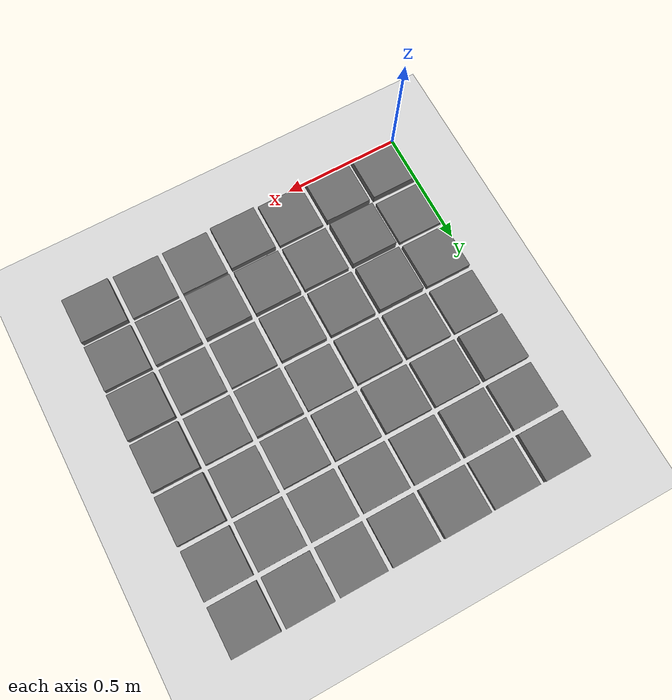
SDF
<sdf version="1.7">
 <world name="default">
  <model name="ground_plane">
   <static>1</static>
   <link name="link">
    <collision name="collision">
     <geometry><plane><normal>0 0 1</normal><size>100 100</size></plane></geometry>
     <surface>
      <contact><collide_bitmask>65535</collide_bitmask></contact>
      <friction><ode><mu>100</mu><mu2>50</mu2></ode></friction>
     </surface>
    </collision>
    <visual name="visual">
     <cast_shadows>0</cast_shadows>
     <geometry><plane><normal>0 0 1</normal><size>100 100</size></plane></geometry>
     <material>
      <script><uri>file://media/materials/scripts/gazebo.material</uri><name>Gazebo/Grey</name></script>
     </material>
    </visual>
   </link>
  </model>
  <model name="terrain_8_8">
   <static>1</static>
   <link name="link">
    <collision name="collision">
     <geometry><box><size>0.2 0.2 0.043654</size></box></geometry>
     <surface><friction><ode><mu>100</mu><mu2>100</mu2></ode></friction></surface>
    </collision>
    <visual name="visual">
     <geometry><box><size>0.2 0.2 0.043654</size></box></geometry>
     <material><ambient>0.4 0.4 0.4 1</ambient></material>
    </visual>
   </link>
   <pose>0.11 0.11 0.021827 0 -0 0</pose>
  </model>
  <model name="terrain_8_9">
   <static>1</static>
   <link name="link">
    <collision name="collision">
     <geometry><box><size>0.2 0.2 0.020469</size></box></geometry>
     <surface><friction><ode><mu>100</mu><mu2>100</mu2></ode></friction></surface>
    </collision>
    <visual name="visual">
     <geometry><box><size>0.2 0.2 0.020469</size></box></geometry>
     <material><ambient>0.4 0.4 0.4 1</ambient></material>
    </visual>
   </link>
   <pose>0.11 0.33 0.010234 0 -0 0</pose>
  </model>
  <model name="terrain_8_10">
   <static>1</static>
   <link name="link">
    <collision name="collision">
     <geometry><box><size>0.2 0.2 0.02935</size></box></geometry>
     <surface><friction><ode><mu>100</mu><mu2>100</mu2></ode></friction></surface>
    </collision>
    <visual name="visual">
     <geometry><box><size>0.2 0.2 0.02935</size></box></geometry>
     <material><ambient>0.4 0.4 0.4 1</ambient></material>
    </visual>
   </link>
   <pose>0.11 0.55 0.014675 0 -0 0</pose>
  </model>
  <model name="terrain_8_11">
   <static>1</static>
   <link name="link">
    <collision name="collision">
     <geometry><box><size>0.2 0.2 0.020907</size></box></geometry>
     <surface><friction><ode><mu>100</mu><mu2>100</mu2></ode></friction></surface>
    </collision>
    <visual name="visual">
     <geometry><box><size>0.2 0.2 0.020907</size></box></geometry>
     <material><ambient>0.4 0.4 0.4 1</ambient></material>
    </visual>
   </link>
   <pose>0.11 0.77 0.010453 0 -0 0</pose>
  </model>
  <model name="terrain_8_12">
   <static>1</static>
   <link name="link">
    <collision name="collision">
     <geometry><box><size>0.2 0.2 0.041535</size></box></geometry>
     <surface><friction><ode><mu>100</mu><mu2>100</mu2></ode></friction></surface>
    </collision>
    <visual name="visual">
     <geometry><box><size>0.2 0.2 0.041535</size></box></geometry>
     <material><ambient>0.4 0.4 0.4 1</ambient></material>
    </visual>
   </link>
   <pose>0.11 0.99 0.020767 0 -0 0</pose>
  </model>
  <model name="terrain_8_13">
   <static>1</static>
   <link name="link">
    <collision name="collision">
     <geometry><box><size>0.2 0.2 0.025391</size></box></geometry>
     <surface><friction><ode><mu>100</mu><mu2>100</mu2></ode></friction></surface>
    </collision>
    <visual name="visual">
     <geometry><box><size>0.2 0.2 0.025391</size></box></geometry>
     <material><ambient>0.4 0.4 0.4 1</ambient></material>
    </visual>
   </link>
   <pose>0.11 1.21 0.012695 0 -0 0</pose>
  </model>
  <model name="terrain_8_14">
   <static>1</static>
   <link name="link">
    <collision name="collision">
     <geometry><box><size>0.2 0.2 0.035851</size></box></geometry>
     <surface><friction><ode><mu>100</mu><mu2>100</mu2></ode></friction></surface>
    </collision>
    <visual name="visual">
     <geometry><box><size>0.2 0.2 0.035851</size></box></geometry>
     <material><ambient>0.4 0.4 0.4 1</ambient></material>
    </visual>
   </link>
   <pose>0.11 1.43 0.017925 0 -0 0</pose>
  </model>
  <model name="terrain_9_8">
   <static>1</static>
   <link name="link">
    <collision name="collision">
     <geometry><box><size>0.2 0.2 0.039149</size></box></geometry>
     <surface><friction><ode><mu>100</mu><mu2>100</mu2></ode></friction></surface>
    </collision>
    <visual name="visual">
     <geometry><box><size>0.2 0.2 0.039149</size></box></geometry>
     <material><ambient>0.4 0.4 0.4 1</ambient></material>
    </visual>
   </link>
   <pose>0.33 0.11 0.019575 0 -0 0</pose>
  </model>
  <model name="terrain_9_9">
   <static>1</static>
   <link name="link">
    <collision name="collision">
     <geometry><box><size>0.2 0.2 0.048768</size></box></geometry>
     <surface><friction><ode><mu>100</mu><mu2>100</mu2></ode></friction></surface>
    </collision>
    <visual name="visual">
     <geometry><box><size>0.2 0.2 0.048768</size></box></geometry>
     <material><ambient>0.4 0.4 0.4 1</ambient></material>
    </visual>
   </link>
   <pose>0.33 0.33 0.024384 0 -0 0</pose>
  </model>
  <model name="terrain_9_10">
   <static>1</static>
   <link name="link">
    <collision name="collision">
     <geometry><box><size>0.2 0.2 0.046906</size></box></geometry>
     <surface><friction><ode><mu>100</mu><mu2>100</mu2></ode></friction></surface>
    </collision>
    <visual name="visual">
     <geometry><box><size>0.2 0.2 0.046906</size></box></geometry>
     <material><ambient>0.4 0.4 0.4 1</ambient></material>
    </visual>
   </link>
   <pose>0.33 0.55 0.023453 0 -0 0</pose>
  </model>
  <model name="terrain_9_11">
   <static>1</static>
   <link name="link">
    <collision name="collision">
     <geometry><box><size>0.2 0.2 0.030399</size></box></geometry>
     <surface><friction><ode><mu>100</mu><mu2>100</mu2></ode></friction></surface>
    </collision>
    <visual name="visual">
     <geometry><box><size>0.2 0.2 0.030399</size></box></geometry>
     <material><ambient>0.4 0.4 0.4 1</ambient></material>
    </visual>
   </link>
   <pose>0.33 0.77 0.0152 0 -0 0</pose>
  </model>
  <model name="terrain_9_12">
   <static>1</static>
   <link name="link">
    <collision name="collision">
     <geometry><box><size>0.2 0.2 0.033689</size></box></geometry>
     <surface><friction><ode><mu>100</mu><mu2>100</mu2></ode></friction></surface>
    </collision>
    <visual name="visual">
     <geometry><box><size>0.2 0.2 0.033689</size></box></geometry>
     <material><ambient>0.4 0.4 0.4 1</ambient></material>
    </visual>
   </link>
   <pose>0.33 0.99 0.016845 0 -0 0</pose>
  </model>
  <model name="terrain_9_13">
   <static>1</static>
   <link name="link">
    <collision name="collision">
     <geometry><box><size>0.2 0.2 0.034276</size></box></geometry>
     <surface><friction><ode><mu>100</mu><mu2>100</mu2></ode></friction></surface>
    </collision>
    <visual name="visual">
     <geometry><box><size>0.2 0.2 0.034276</size></box></geometry>
     <material><ambient>0.4 0.4 0.4 1</ambient></material>
    </visual>
   </link>
   <pose>0.33 1.21 0.017138 0 -0 0</pose>
  </model>
  <model name="terrain_9_14">
   <static>1</static>
   <link name="link">
    <collision name="collision">
     <geometry><box><size>0.2 0.2 0.021602</size></box></geometry>
     <surface><friction><ode><mu>100</mu><mu2>100</mu2></ode></friction></surface>
    </collision>
    <visual name="visual">
     <geometry><box><size>0.2 0.2 0.021602</size></box></geometry>
     <material><ambient>0.4 0.4 0.4 1</ambient></material>
    </visual>
   </link>
   <pose>0.33 1.43 0.010801 0 -0 0</pose>
  </model>
  <model name="terrain_10_8">
   <static>1</static>
   <link name="link">
    <collision name="collision">
     <geometry><box><size>0.2 0.2 0.021784</size></box></geometry>
     <surface><friction><ode><mu>100</mu><mu2>100</mu2></ode></friction></surface>
    </collision>
    <visual name="visual">
     <geometry><box><size>0.2 0.2 0.021784</size></box></geometry>
     <material><ambient>0.4 0.4 0.4 1</ambient></material>
    </visual>
   </link>
   <pose>0.55 0.11 0.010892 0 -0 0</pose>
  </model>
  <model name="terrain_10_9">
   <static>1</static>
   <link name="link">
    <collision name="collision">
     <geometry><box><size>0.2 0.2 0.029784</size></box></geometry>
     <surface><friction><ode><mu>100</mu><mu2>100</mu2></ode></friction></surface>
    </collision>
    <visual name="visual">
     <geometry><box><size>0.2 0.2 0.029784</size></box></geometry>
     <material><ambient>0.4 0.4 0.4 1</ambient></material>
    </visual>
   </link>
   <pose>0.55 0.33 0.014892 0 -0 0</pose>
  </model>
  <model name="terrain_10_10">
   <static>1</static>
   <link name="link">
    <collision name="collision">
     <geometry><box><size>0.2 0.2 0.037088</size></box></geometry>
     <surface><friction><ode><mu>100</mu><mu2>100</mu2></ode></friction></surface>
    </collision>
    <visual name="visual">
     <geometry><box><size>0.2 0.2 0.037088</size></box></geometry>
     <material><ambient>0.4 0.4 0.4 1</ambient></material>
    </visual>
   </link>
   <pose>0.55 0.55 0.018544 0 -0 0</pose>
  </model>
  <model name="terrain_10_11">
   <static>1</static>
   <link name="link">
    <collision name="collision">
     <geometry><box><size>0.2 0.2 0.031507</size></box></geometry>
     <surface><friction><ode><mu>100</mu><mu2>100</mu2></ode></friction></surface>
    </collision>
    <visual name="visual">
     <geometry><box><size>0.2 0.2 0.031507</size></box></geometry>
     <material><ambient>0.4 0.4 0.4 1</ambient></material>
    </visual>
   </link>
   <pose>0.55 0.77 0.015754 0 -0 0</pose>
  </model>
  <model name="terrain_10_12">
   <static>1</static>
   <link name="link">
    <collision name="collision">
     <geometry><box><size>0.2 0.2 0.044557</size></box></geometry>
     <surface><friction><ode><mu>100</mu><mu2>100</mu2></ode></friction></surface>
    </collision>
    <visual name="visual">
     <geometry><box><size>0.2 0.2 0.044557</size></box></geometry>
     <material><ambient>0.4 0.4 0.4 1</ambient></material>
    </visual>
   </link>
   <pose>0.55 0.99 0.022278 0 -0 0</pose>
  </model>
  <model name="terrain_10_13">
   <static>1</static>
   <link name="link">
    <collision name="collision">
     <geometry><box><size>0.2 0.2 0.023219</size></box></geometry>
     <surface><friction><ode><mu>100</mu><mu2>100</mu2></ode></friction></surface>
    </collision>
    <visual name="visual">
     <geometry><box><size>0.2 0.2 0.023219</size></box></geometry>
     <material><ambient>0.4 0.4 0.4 1</ambient></material>
    </visual>
   </link>
   <pose>0.55 1.21 0.01161 0 -0 0</pose>
  </model>
  <model name="terrain_10_14">
   <static>1</static>
   <link name="link">
    <collision name="collision">
     <geometry><box><size>0.2 0.2 0.03986</size></box></geometry>
     <surface><friction><ode><mu>100</mu><mu2>100</mu2></ode></friction></surface>
    </collision>
    <visual name="visual">
     <geometry><box><size>0.2 0.2 0.03986</size></box></geometry>
     <material><ambient>0.4 0.4 0.4 1</ambient></material>
    </visual>
   </link>
   <pose>0.55 1.43 0.01993 0 -0 0</pose>
  </model>
  <model name="terrain_11_8">
   <static>1</static>
   <link name="link">
    <collision name="collision">
     <geometry><box><size>0.2 0.2 0.036158</size></box></geometry>
     <surface><friction><ode><mu>100</mu><mu2>100</mu2></ode></friction></surface>
    </collision>
    <visual name="visual">
     <geometry><box><size>0.2 0.2 0.036158</size></box></geometry>
     <material><ambient>0.4 0.4 0.4 1</ambient></material>
    </visual>
   </link>
   <pose>0.77 0.11 0.018079 0 -0 0</pose>
  </model>
  <model name="terrain_11_9">
   <static>1</static>
   <link name="link">
    <collision name="collision">
     <geometry><box><size>0.2 0.2 0.04115</size></box></geometry>
     <surface><friction><ode><mu>100</mu><mu2>100</mu2></ode></friction></surface>
    </collision>
    <visual name="visual">
     <geometry><box><size>0.2 0.2 0.04115</size></box></geometry>
     <material><ambient>0.4 0.4 0.4 1</ambient></material>
    </visual>
   </link>
   <pose>0.77 0.33 0.020575 0 -0 0</pose>
  </model>
  <model name="terrain_11_10">
   <static>1</static>
   <link name="link">
    <collision name="collision">
     <geometry><box><size>0.2 0.2 0.036824</size></box></geometry>
     <surface><friction><ode><mu>100</mu><mu2>100</mu2></ode></friction></surface>
    </collision>
    <visual name="visual">
     <geometry><box><size>0.2 0.2 0.036824</size></box></geometry>
     <material><ambient>0.4 0.4 0.4 1</ambient></material>
    </visual>
   </link>
   <pose>0.77 0.55 0.018412 0 -0 0</pose>
  </model>
  <model name="terrain_11_11">
   <static>1</static>
   <link name="link">
    <collision name="collision">
     <geometry><box><size>0.2 0.2 0.022368</size></box></geometry>
     <surface><friction><ode><mu>100</mu><mu2>100</mu2></ode></friction></surface>
    </collision>
    <visual name="visual">
     <geometry><box><size>0.2 0.2 0.022368</size></box></geometry>
     <material><ambient>0.4 0.4 0.4 1</ambient></material>
    </visual>
   </link>
   <pose>0.77 0.77 0.011184 0 -0 0</pose>
  </model>
  <model name="terrain_11_12">
   <static>1</static>
   <link name="link">
    <collision name="collision">
     <geometry><box><size>0.2 0.2 0.036766</size></box></geometry>
     <surface><friction><ode><mu>100</mu><mu2>100</mu2></ode></friction></surface>
    </collision>
    <visual name="visual">
     <geometry><box><size>0.2 0.2 0.036766</size></box></geometry>
     <material><ambient>0.4 0.4 0.4 1</ambient></material>
    </visual>
   </link>
   <pose>0.77 0.99 0.018383 0 -0 0</pose>
  </model>
  <model name="terrain_11_13">
   <static>1</static>
   <link name="link">
    <collision name="collision">
     <geometry><box><size>0.2 0.2 0.033861</size></box></geometry>
     <surface><friction><ode><mu>100</mu><mu2>100</mu2></ode></friction></surface>
    </collision>
    <visual name="visual">
     <geometry><box><size>0.2 0.2 0.033861</size></box></geometry>
     <material><ambient>0.4 0.4 0.4 1</ambient></material>
    </visual>
   </link>
   <pose>0.77 1.21 0.016931 0 -0 0</pose>
  </model>
  <model name="terrain_11_14">
   <static>1</static>
   <link name="link">
    <collision name="collision">
     <geometry><box><size>0.2 0.2 0.035045</size></box></geometry>
     <surface><friction><ode><mu>100</mu><mu2>100</mu2></ode></friction></surface>
    </collision>
    <visual name="visual">
     <geometry><box><size>0.2 0.2 0.035045</size></box></geometry>
     <material><ambient>0.4 0.4 0.4 1</ambient></material>
    </visual>
   </link>
   <pose>0.77 1.43 0.017523 0 -0 0</pose>
  </model>
  <model name="terrain_12_8">
   <static>1</static>
   <link name="link">
    <collision name="collision">
     <geometry><box><size>0.2 0.2 0.021308</size></box></geometry>
     <surface><friction><ode><mu>100</mu><mu2>100</mu2></ode></friction></surface>
    </collision>
    <visual name="visual">
     <geometry><box><size>0.2 0.2 0.021308</size></box></geometry>
     <material><ambient>0.4 0.4 0.4 1</ambient></material>
    </visual>
   </link>
   <pose>0.99 0.11 0.010654 0 -0 0</pose>
  </model>
  <model name="terrain_12_9">
   <static>1</static>
   <link name="link">
    <collision name="collision">
     <geometry><box><size>0.2 0.2 0.04636</size></box></geometry>
     <surface><friction><ode><mu>100</mu><mu2>100</mu2></ode></friction></surface>
    </collision>
    <visual name="visual">
     <geometry><box><size>0.2 0.2 0.04636</size></box></geometry>
     <material><ambient>0.4 0.4 0.4 1</ambient></material>
    </visual>
   </link>
   <pose>0.99 0.33 0.02318 0 -0 0</pose>
  </model>
  <model name="terrain_12_10">
   <static>1</static>
   <link name="link">
    <collision name="collision">
     <geometry><box><size>0.2 0.2 0.024504</size></box></geometry>
     <surface><friction><ode><mu>100</mu><mu2>100</mu2></ode></friction></surface>
    </collision>
    <visual name="visual">
     <geometry><box><size>0.2 0.2 0.024504</size></box></geometry>
     <material><ambient>0.4 0.4 0.4 1</ambient></material>
    </visual>
   </link>
   <pose>0.99 0.55 0.012252 0 -0 0</pose>
  </model>
  <model name="terrain_12_11">
   <static>1</static>
   <link name="link">
    <collision name="collision">
     <geometry><box><size>0.2 0.2 0.045339</size></box></geometry>
     <surface><friction><ode><mu>100</mu><mu2>100</mu2></ode></friction></surface>
    </collision>
    <visual name="visual">
     <geometry><box><size>0.2 0.2 0.045339</size></box></geometry>
     <material><ambient>0.4 0.4 0.4 1</ambient></material>
    </visual>
   </link>
   <pose>0.99 0.77 0.02267 0 -0 0</pose>
  </model>
  <model name="terrain_12_12">
   <static>1</static>
   <link name="link">
    <collision name="collision">
     <geometry><box><size>0.2 0.2 0.044175</size></box></geometry>
     <surface><friction><ode><mu>100</mu><mu2>100</mu2></ode></friction></surface>
    </collision>
    <visual name="visual">
     <geometry><box><size>0.2 0.2 0.044175</size></box></geometry>
     <material><ambient>0.4 0.4 0.4 1</ambient></material>
    </visual>
   </link>
   <pose>0.99 0.99 0.022087 0 -0 0</pose>
  </model>
  <model name="terrain_12_13">
   <static>1</static>
   <link name="link">
    <collision name="collision">
     <geometry><box><size>0.2 0.2 0.041887</size></box></geometry>
     <surface><friction><ode><mu>100</mu><mu2>100</mu2></ode></friction></surface>
    </collision>
    <visual name="visual">
     <geometry><box><size>0.2 0.2 0.041887</size></box></geometry>
     <material><ambient>0.4 0.4 0.4 1</ambient></material>
    </visual>
   </link>
   <pose>0.99 1.21 0.020944 0 -0 0</pose>
  </model>
  <model name="terrain_12_14">
   <static>1</static>
   <link name="link">
    <collision name="collision">
     <geometry><box><size>0.2 0.2 0.029896</size></box></geometry>
     <surface><friction><ode><mu>100</mu><mu2>100</mu2></ode></friction></surface>
    </collision>
    <visual name="visual">
     <geometry><box><size>0.2 0.2 0.029896</size></box></geometry>
     <material><ambient>0.4 0.4 0.4 1</ambient></material>
    </visual>
   </link>
   <pose>0.99 1.43 0.014948 0 -0 0</pose>
  </model>
  <model name="terrain_13_8">
   <static>1</static>
   <link name="link">
    <collision name="collision">
     <geometry><box><size>0.2 0.2 0.023588</size></box></geometry>
     <surface><friction><ode><mu>100</mu><mu2>100</mu2></ode></friction></surface>
    </collision>
    <visual name="visual">
     <geometry><box><size>0.2 0.2 0.023588</size></box></geometry>
     <material><ambient>0.4 0.4 0.4 1</ambient></material>
    </visual>
   </link>
   <pose>1.21 0.11 0.011794 0 -0 0</pose>
  </model>
  <model name="terrain_13_9">
   <static>1</static>
   <link name="link">
    <collision name="collision">
     <geometry><box><size>0.2 0.2 0.030743</size></box></geometry>
     <surface><friction><ode><mu>100</mu><mu2>100</mu2></ode></friction></surface>
    </collision>
    <visual name="visual">
     <geometry><box><size>0.2 0.2 0.030743</size></box></geometry>
     <material><ambient>0.4 0.4 0.4 1</ambient></material>
    </visual>
   </link>
   <pose>1.21 0.33 0.015371 0 -0 0</pose>
  </model>
  <model name="terrain_13_10">
   <static>1</static>
   <link name="link">
    <collision name="collision">
     <geometry><box><size>0.2 0.2 0.026176</size></box></geometry>
     <surface><friction><ode><mu>100</mu><mu2>100</mu2></ode></friction></surface>
    </collision>
    <visual name="visual">
     <geometry><box><size>0.2 0.2 0.026176</size></box></geometry>
     <material><ambient>0.4 0.4 0.4 1</ambient></material>
    </visual>
   </link>
   <pose>1.21 0.55 0.013088 0 -0 0</pose>
  </model>
  <model name="terrain_13_11">
   <static>1</static>
   <link name="link">
    <collision name="collision">
     <geometry><box><size>0.2 0.2 0.027611</size></box></geometry>
     <surface><friction><ode><mu>100</mu><mu2>100</mu2></ode></friction></surface>
    </collision>
    <visual name="visual">
     <geometry><box><size>0.2 0.2 0.027611</size></box></geometry>
     <material><ambient>0.4 0.4 0.4 1</ambient></material>
    </visual>
   </link>
   <pose>1.21 0.77 0.013806 0 -0 0</pose>
  </model>
  <model name="terrain_13_12">
   <static>1</static>
   <link name="link">
    <collision name="collision">
     <geometry><box><size>0.2 0.2 0.025273</size></box></geometry>
     <surface><friction><ode><mu>100</mu><mu2>100</mu2></ode></friction></surface>
    </collision>
    <visual name="visual">
     <geometry><box><size>0.2 0.2 0.025273</size></box></geometry>
     <material><ambient>0.4 0.4 0.4 1</ambient></material>
    </visual>
   </link>
   <pose>1.21 0.99 0.012636 0 -0 0</pose>
  </model>
  <model name="terrain_13_13">
   <static>1</static>
   <link name="link">
    <collision name="collision">
     <geometry><box><size>0.2 0.2 0.03667</size></box></geometry>
     <surface><friction><ode><mu>100</mu><mu2>100</mu2></ode></friction></surface>
    </collision>
    <visual name="visual">
     <geometry><box><size>0.2 0.2 0.03667</size></box></geometry>
     <material><ambient>0.4 0.4 0.4 1</ambient></material>
    </visual>
   </link>
   <pose>1.21 1.21 0.018335 0 -0 0</pose>
  </model>
  <model name="terrain_13_14">
   <static>1</static>
   <link name="link">
    <collision name="collision">
     <geometry><box><size>0.2 0.2 0.043876</size></box></geometry>
     <surface><friction><ode><mu>100</mu><mu2>100</mu2></ode></friction></surface>
    </collision>
    <visual name="visual">
     <geometry><box><size>0.2 0.2 0.043876</size></box></geometry>
     <material><ambient>0.4 0.4 0.4 1</ambient></material>
    </visual>
   </link>
   <pose>1.21 1.43 0.021938 0 -0 0</pose>
  </model>
  <model name="terrain_14_8">
   <static>1</static>
   <link name="link">
    <collision name="collision">
     <geometry><box><size>0.2 0.2 0.037111</size></box></geometry>
     <surface><friction><ode><mu>100</mu><mu2>100</mu2></ode></friction></surface>
    </collision>
    <visual name="visual">
     <geometry><box><size>0.2 0.2 0.037111</size></box></geometry>
     <material><ambient>0.4 0.4 0.4 1</ambient></material>
    </visual>
   </link>
   <pose>1.43 0.11 0.018556 0 -0 0</pose>
  </model>
  <model name="terrain_14_9">
   <static>1</static>
   <link name="link">
    <collision name="collision">
     <geometry><box><size>0.2 0.2 0.031385</size></box></geometry>
     <surface><friction><ode><mu>100</mu><mu2>100</mu2></ode></friction></surface>
    </collision>
    <visual name="visual">
     <geometry><box><size>0.2 0.2 0.031385</size></box></geometry>
     <material><ambient>0.4 0.4 0.4 1</ambient></material>
    </visual>
   </link>
   <pose>1.43 0.33 0.015692 0 -0 0</pose>
  </model>
  <model name="terrain_14_10">
   <static>1</static>
   <link name="link">
    <collision name="collision">
     <geometry><box><size>0.2 0.2 0.040083</size></box></geometry>
     <surface><friction><ode><mu>100</mu><mu2>100</mu2></ode></friction></surface>
    </collision>
    <visual name="visual">
     <geometry><box><size>0.2 0.2 0.040083</size></box></geometry>
     <material><ambient>0.4 0.4 0.4 1</ambient></material>
    </visual>
   </link>
   <pose>1.43 0.55 0.020042 0 -0 0</pose>
  </model>
  <model name="terrain_14_11">
   <static>1</static>
   <link name="link">
    <collision name="collision">
     <geometry><box><size>0.2 0.2 0.046127</size></box></geometry>
     <surface><friction><ode><mu>100</mu><mu2>100</mu2></ode></friction></surface>
    </collision>
    <visual name="visual">
     <geometry><box><size>0.2 0.2 0.046127</size></box></geometry>
     <material><ambient>0.4 0.4 0.4 1</ambient></material>
    </visual>
   </link>
   <pose>1.43 0.77 0.023063 0 -0 0</pose>
  </model>
  <model name="terrain_14_12">
   <static>1</static>
   <link name="link">
    <collision name="collision">
     <geometry><box><size>0.2 0.2 0.046468</size></box></geometry>
     <surface><friction><ode><mu>100</mu><mu2>100</mu2></ode></friction></surface>
    </collision>
    <visual name="visual">
     <geometry><box><size>0.2 0.2 0.046468</size></box></geometry>
     <material><ambient>0.4 0.4 0.4 1</ambient></material>
    </visual>
   </link>
   <pose>1.43 0.99 0.023234 0 -0 0</pose>
  </model>
  <model name="terrain_14_13">
   <static>1</static>
   <link name="link">
    <collision name="collision">
     <geometry><box><size>0.2 0.2 0.032285</size></box></geometry>
     <surface><friction><ode><mu>100</mu><mu2>100</mu2></ode></friction></surface>
    </collision>
    <visual name="visual">
     <geometry><box><size>0.2 0.2 0.032285</size></box></geometry>
     <material><ambient>0.4 0.4 0.4 1</ambient></material>
    </visual>
   </link>
   <pose>1.43 1.21 0.016142 0 -0 0</pose>
  </model>
  <model name="terrain_14_14">
   <static>1</static>
   <link name="link">
    <collision name="collision">
     <geometry><box><size>0.2 0.2 0.026681</size></box></geometry>
     <surface><friction><ode><mu>100</mu><mu2>100</mu2></ode></friction></surface>
    </collision>
    <visual name="visual">
     <geometry><box><size>0.2 0.2 0.026681</size></box></geometry>
     <material><ambient>0.4 0.4 0.4 1</ambient></material>
    </visual>
   </link>
   <pose>1.43 1.43 0.013341 0 -0 0</pose>
  </model>
 </world>
</sdf>
